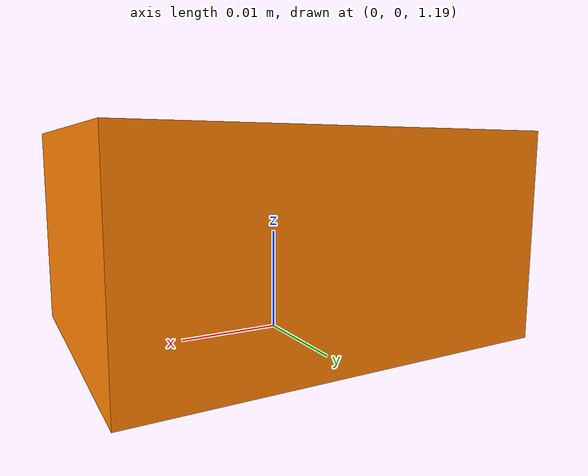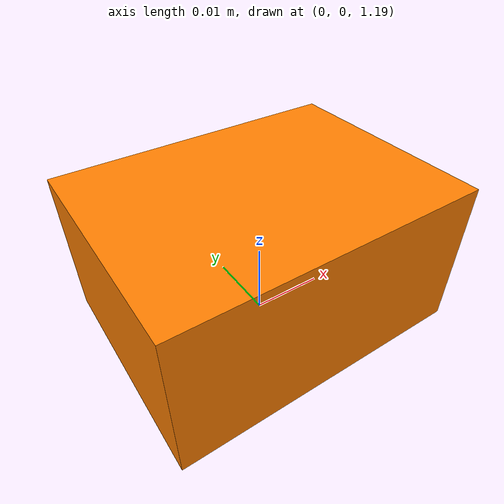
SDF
<?xml version="1.0" ?>
<sdf version="1.4">
  <model name="overhead_camera">
    <static>true</static>
    <pose>0 0 1.2  0 1.5708 0</pose>

    <link name="camera_link">
      <visual name="cam_vis">
        <geometry><box><size>0.02 0.03 0.04</size></box></geometry>
        <material>
          <ambient>1.0 0.5 0.0 1</ambient>
          <diffuse>1.0 0.5 0.0 1</diffuse>
        </material>
      </visual>

      <sensor name="conveyor_camera" type="camera">
        <always_on>true</always_on>
        <update_rate>30</update_rate>

        <camera>
          <horizontal_fov>1.396</horizontal_fov>
          <image>
            <width>640</width>
            <height>480</height>
            <format>R8G8B8</format>
          </image>
          <clip><near>0.02</near><far>20</far></clip>
        </camera>

        <plugin name="gazebo_ros_camera" filename="libgazebo_ros_camera.so">
          <always_publish>true</always_publish>
          <robotNamespace>/</robotNamespace>
          <camera_name>camera</camera_name>
          <frame_name>camera_link</frame_name>
          <image_topic_name>image_raw</image_topic_name>
          <camera_info_topic_name>camera_info</camera_info_topic_name>
        </plugin>
      </sensor>
    </link>
  </model>
</sdf>
